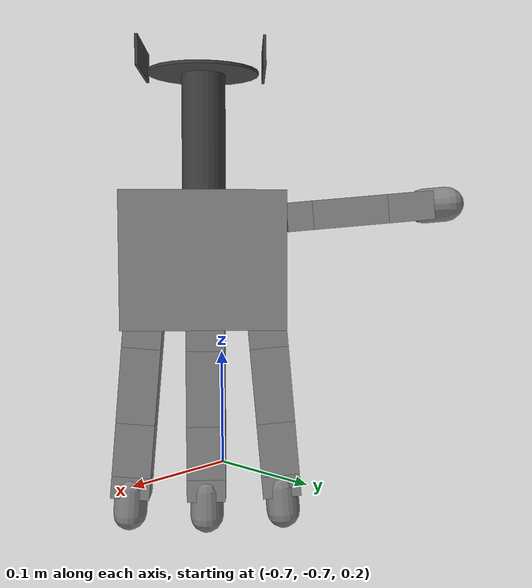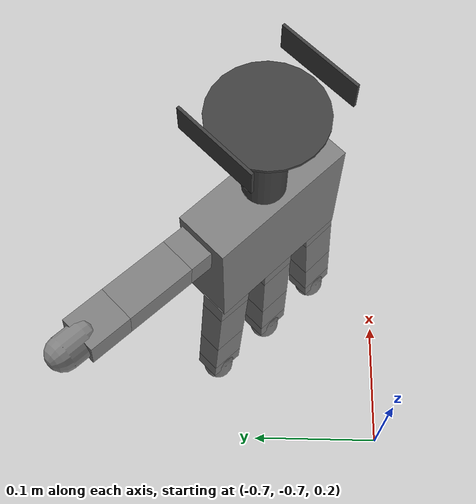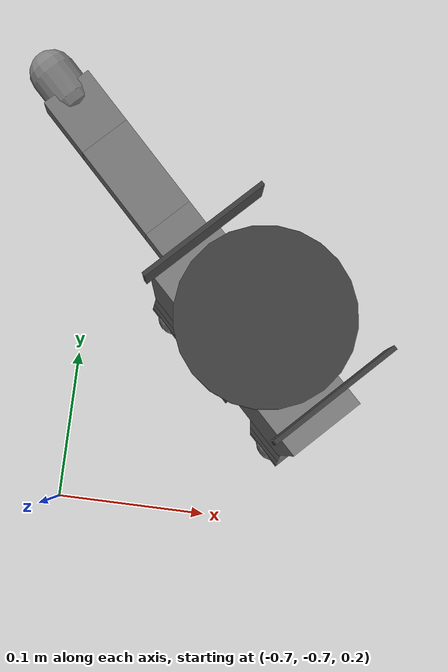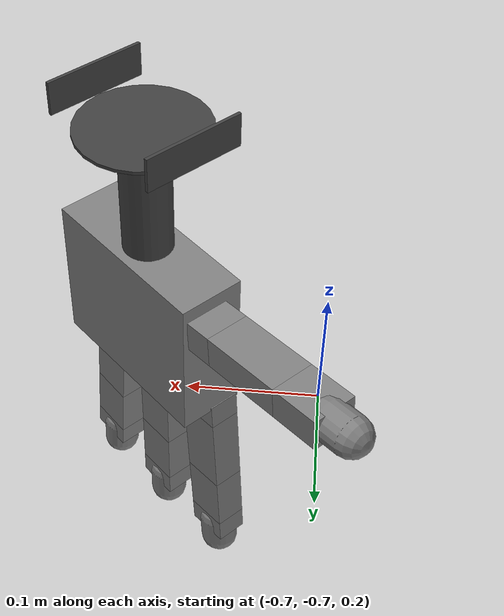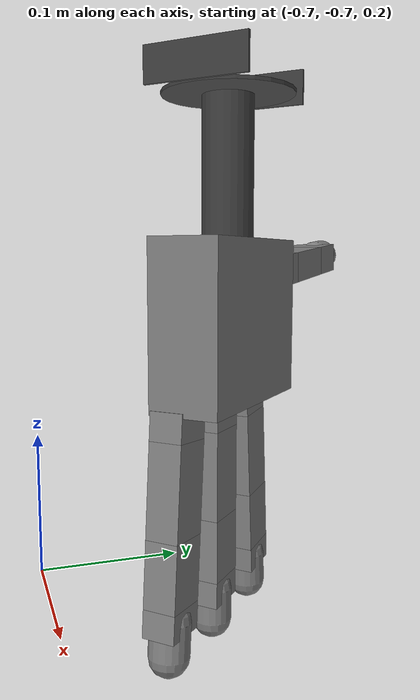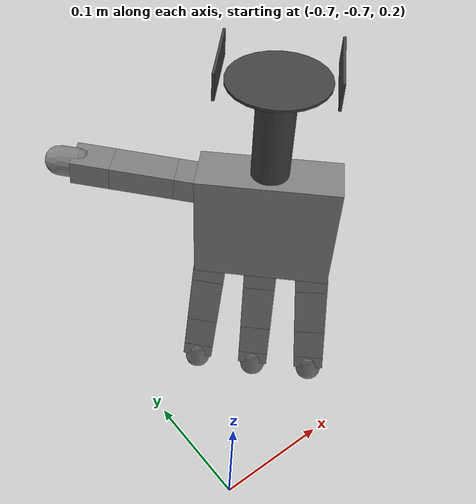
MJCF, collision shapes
<?xml version='1.0' encoding='utf-8'?>
<mujoco model="allegro_right">
  <include file="adapter_assets.xml"/>

  <option cone="elliptic" impratio="10"/>

  <default>
    <default class="allegro_right">
      <joint axis="0 1 0" damping=".1"/>
      <position kp="1"/>
      <geom density="800"/>

      <default class="visual">
        <geom type="mesh" contype="0" conaffinity="0" group="2" material="black"/>
        <default class="palm_visual">
          <geom mesh="base_link"/>
        </default>
        <default class="base_visual">
          <geom mesh="link_0.0"/>
        </default>
        <default class="proximal_visual">
          <geom mesh="link_1.0"/>
        </default>
        <default class="medial_visual">
          <geom mesh="link_2.0"/>
        </default>
        <default class="distal_visual">
          <geom mesh="link_3.0"/>
        </default>
        <default class="fingertip_visual">
          <geom pos="0 0 0.0267" material="white" mesh="link_3.0_tip"/>
        </default>
        <default class="thumbtip_visual">
          <geom pos="0 0 0.0423" material="white" mesh="link_15.0_tip"/>
        </default>
      </default>

      <default class="collision">
        <geom group="3" type="box" mass="0"/>
        <default class="palm_collision">
          <geom size="0.0204 0.0565 0.0475" pos="-0.0093 0 -0.0475"/>
        </default>
        <default class="base_collision">
          <geom size="0.0098 0.01375 0.0082" pos="0 0 0.0082"/>
          <default class="thumb_base_collision">
            <geom size="0.0179 0.017 0.02275" pos="-0.0179 0.009 0.0145"/>
          </default>
        </default>
        <default class="proximal_collision">
          <geom size="0.0098 0.01375 0.027" pos="0 0 0.027"/>
          <default class="thumb_proximal_collision">
            <geom size="0.0098 0.01375 0.00885" pos="0 0 0.00885"/>
          </default>
        </default>
        <default class="medial_collision">
          <geom size="0.0098 0.01375 0.0192" pos="0 0 0.0192"/>
          <default class="thumb_medial_collision">
            <geom size="0.0098 0.01375 0.0257" pos="0 0 0.0257"/>
          </default>
        </default>
        <default class="distal_collision">
          <geom size="0.0098 0.01375 0.008" pos="0 0 0.008"/>
          <default class="thumb_distal_collision">
            <geom size="0.0098 0.01375 0.0157" pos="0 0 0.0157"/>
          </default>
        </default>
        <default class="fingertip_collision">
          <geom type="capsule" size="0.012 0.01" pos="0 0 0.019"/>
          <default class="thumbtip_collision">
            <geom type="capsule" size="0.012 0.008" pos="0 0 0.035"/>
          </default>
        </default>
      </default>

      <default class="base">
        <joint axis="0 0 1" range="-0.47 0.47"/>
        <position ctrlrange="-0.47 0.47"/>
      </default>
      <default class="proximal">
        <joint range="-0.196 1.61"/>
        <position ctrlrange="-0.196 1.61"/>
      </default>
      <default class="medial">
        <joint range="-0.174 1.709"/>
        <position ctrlrange="-0.174 1.709"/>
      </default>
      <default class="distal">
        <joint range="-0.227 1.618"/>
        <position ctrlrange="-0.227 1.618"/>
      </default>
      <default class="thumb_base">
        <joint axis="-1 0 0" range="0.263 1.396"/>
        <position ctrlrange="0.263 1.396"/>
      </default>
      <default class="thumb_proximal">
        <joint axis="0 0 1" range="-0.105 1.163"/>
        <position ctrlrange="-0.105 1.163"/>
      </default>
      <default class="thumb_medial">
        <joint range="-0.189 1.644"/>
        <position ctrlrange="-0.189 1.644"/>
      </default>
      <default class="thumb_distal">
        <joint range="-0.162 1.719"/>
        <position ctrlrange="-0.162 1.719"/>
      </default>
    </default>
  </default>

  <asset>
    <material name="franka_white"     rgba="1 1 1 1"/>
    <material name="franka_off_white" rgba="0.901961 0.921569 0.929412 1"/>
    <material name="franka_black"     rgba="0.25 0.25 0.25 1"/>
    <mesh name="franka_hand_c"  file="/home/mourya/one_hand_ws/src/mujoco_menagerie/franka_emika_panda/assets/hand.stl"/>
    <mesh name="franka_hand_0"  file="/home/mourya/one_hand_ws/src/mujoco_menagerie/franka_emika_panda/assets/hand_0.obj"/>
    <mesh name="franka_hand_1"  file="/home/mourya/one_hand_ws/src/mujoco_menagerie/franka_emika_panda/assets/hand_1.obj"/>
    <mesh name="franka_hand_2"  file="/home/mourya/one_hand_ws/src/mujoco_menagerie/franka_emika_panda/assets/hand_2.obj"/>
    <mesh name="franka_hand_3"  file="/home/mourya/one_hand_ws/src/mujoco_menagerie/franka_emika_panda/assets/hand_3.obj"/>
    <mesh name="franka_hand_4"  file="/home/mourya/one_hand_ws/src/mujoco_menagerie/franka_emika_panda/assets/hand_4.obj"/>
    <material name="black" rgba="0.2 0.2 0.2 1"/>
    <material name="white" rgba="0.9 0.9 0.9 1"/>

    <mesh file="/home/mourya/one_hand_ws/src/mujoco_menagerie/wonik_allegro/assets/base_link.stl"/>
    <mesh file="/home/mourya/one_hand_ws/src/mujoco_menagerie/wonik_allegro/assets/link_0.0.stl"/>
    <mesh file="/home/mourya/one_hand_ws/src/mujoco_menagerie/wonik_allegro/assets/link_1.0.stl"/>
    <mesh file="/home/mourya/one_hand_ws/src/mujoco_menagerie/wonik_allegro/assets/link_2.0.stl"/>
    <mesh file="/home/mourya/one_hand_ws/src/mujoco_menagerie/wonik_allegro/assets/link_3.0.stl"/>
    <mesh file="/home/mourya/one_hand_ws/src/mujoco_menagerie/wonik_allegro/assets/link_3.0_tip.stl"/>
    <mesh file="/home/mourya/one_hand_ws/src/mujoco_menagerie/wonik_allegro/assets/link_12.0_right.stl"/>
    <mesh file="/home/mourya/one_hand_ws/src/mujoco_menagerie/wonik_allegro/assets/link_13.0.stl"/>
    <mesh file="/home/mourya/one_hand_ws/src/mujoco_menagerie/wonik_allegro/assets/link_14.0.stl"/>
    <mesh file="/home/mourya/one_hand_ws/src/mujoco_menagerie/wonik_allegro/assets/link_15.0.stl"/>
    <mesh file="/home/mourya/one_hand_ws/src/mujoco_menagerie/wonik_allegro/assets/link_15.0_tip.stl"/>
    </asset>

  <worldbody>
    <body name="tool_physical_allegro_hand" pos="-0.59 -0.6 0.533" quat="0.9238795 0 0 0.3826834" childclass="allegro_right">
      <freejoint/>
      <inertial mass="2.5" pos="0 0 -0.12" diaginertia="0.02 0.02 0.01"/>

      <!-- 1. Custom Male Adapter (Flipped 180deg so flat base is at Z=-0.019, pegs pointing UP at Z=0 towards bare robot wrist) -->
      <body name="custom_adapter" pos="0 0 0" quat="0 1 0 0">
        <geom type="mesh" mesh="franka_adapter_male" material="franka_black" contype="0" conaffinity="0" group="2"/>
        <geom type="cylinder" size="0.038 0.001" pos="0 0 0.019" material="franka_black" contype="0" conaffinity="0" group="2"/>
        <geom type="box" size="0.03 0.001 0.01" pos="0 -0.0415 0.01" material="franka_black" contype="0" conaffinity="0" group="2"/>
        <geom type="box" size="0.03 0.001 0.01" pos="0 0.0415 0.01" material="franka_black" contype="0" conaffinity="0" group="2"/>
      </body>

      <!-- 2. Cylindrical Extender Rod (Radius 15mm, Height 80mm). Center = -0.019 - 0.04 = -0.059 -->
      <!-- This rod acts as a standoff so the Allegro thumb base does not collide with the wide adapter -->
      <geom type="cylinder" size="0.015 0.04" pos="0 0 -0.059" material="franka_black" contype="1" conaffinity="1"/>

      <!-- 3. Allegro Hand Body -->
      <!-- The native base_link has its wrist at local Z=-0.095 and fingers at Z=0. -->
      <!-- We flip the hand 180 degrees around X (quat="0 0 1 0") so it hangs down and keeps its correct left/right orientation. -->
      <!-- Translating the cylinder to the center of the visual X-axis block. -->
      <body name="allegro_hand_tool_connector" pos="-0.0093 0 -0.194">
        <!-- Flipped 180 degrees around X so the wrist faces UP and fingers face DOWN -->
        <body name="palm" quat="0 0 1 0" childclass="allegro_right">
                  <geom class="palm_visual" mesh="base_link"/>
                  <geom class="palm_collision"/>
                  <!-- First finger -->
                  <body name="ff_base" pos="0 0.0435 -0.001542" quat="0.999048 -0.0436194 0 0">
                    <joint name="ffj0" class="base"/>
                    <geom class="base_visual"/>
                    <geom class="base_collision"/>
                    <body name="ff_proximal" pos="0 0 0.0164">
                      <joint name="ffj1" class="proximal"/>
                      <geom class="proximal_visual"/>
                      <geom class="proximal_collision"/>
                      <body name="ff_medial" pos="0 0 0.054">
                        <joint name="ffj2" class="medial"/>
                        <geom class="medial_visual"/>
                        <geom class="medial_collision"/>
                        <body name="ff_distal" pos="0 0 0.0384">
                          <joint name="ffj3" class="distal"/>
                          <geom class="distal_visual"/>
                          <geom class="distal_collision"/>
                          <body name="ff_tip">
                            <geom class="fingertip_visual"/>
                            <geom class="fingertip_collision"/>
                          </body>
                        </body>
                      </body>
                    </body>
                  </body>
                  <!-- Middle finger -->
                  <body name="mf_base" pos="0 0 0.0007">
                    <joint name="mfj0" class="base"/>
                    <geom class="base_visual"/>
                    <geom class="base_collision"/>
                    <body name="mf_proximal" pos="0 0 0.0164">
                      <joint name="mfj1" class="proximal"/>
                      <geom class="proximal_visual"/>
                      <geom class="proximal_collision"/>
                      <body name="mf_medial" pos="0 0 0.054">
                        <joint name="mfj2" class="medial"/>
                        <geom class="medial_visual"/>
                        <geom class="medial_collision"/>
                        <body name="mf_distal" pos="0 0 0.0384">
                          <joint name="mfj3" class="distal"/>
                          <geom class="distal_visual"/>
                          <geom class="distal_collision"/>
                          <body name="mf_tip">
                            <geom class="fingertip_visual"/>
                            <geom class="fingertip_collision"/>
                          </body>
                        </body>
                      </body>
                    </body>
                  </body>
                  <!-- Ring finger -->
                  <body name="rf_base" pos="0 -0.0435 -0.001542" quat="0.999048 0.0436194 0 0">
                    <joint name="rfj0" class="base"/>
                    <geom class="base_visual"/>
                    <geom class="base_collision"/>
                    <body name="rf_proximal" pos="0 0 0.0164">
                      <joint name="rfj1" class="proximal"/>
                      <geom class="proximal_visual"/>
                      <geom class="proximal_collision"/>
                      <body name="rf_medial" pos="0 0 0.054">
                        <joint name="rfj2" class="medial"/>
                        <geom class="medial_visual"/>
                        <geom class="medial_collision"/>
                        <body name="rf_distal" pos="0 0 0.0384">
                          <joint name="rfj3" class="distal"/>
                          <geom class="distal_visual"/>
                          <geom class="distal_collision"/>
                          <body name="rf_tip">
                            <geom class="fingertip_visual"/>
                            <geom class="fingertip_collision"/>
                          </body>
                        </body>
                      </body>
                    </body>
                  </body>
                  <!-- Thumb -->
                  <body name="th_base" pos="-0.0182 0.019333 -0.045987" quat="0.477714 -0.521334 -0.521334 -0.477714">
                    <joint name="thj0" class="thumb_base"/>
                    <geom class="visual" mesh="link_12.0_right"/>
                    <geom class="thumb_base_collision"/>
                    <body name="th_proximal" pos="-0.027 0.005 0.0399">
                      <joint name="thj1" class="thumb_proximal"/>
                      <geom class="visual" mesh="link_13.0"/>
                      <geom class="thumb_proximal_collision"/>
                      <body name="th_medial" pos="0 0 0.0177">
                        <joint name="thj2" class="thumb_medial"/>
                        <geom class="visual" mesh="link_14.0"/>
                        <geom class="thumb_medial_collision"/>
                        <body name="th_distal" pos="0 0 0.0514">
                          <joint name="thj3" class="thumb_distal"/>
                          <geom class="visual" mesh="link_15.0"/>
                          <geom class="thumb_distal_collision"/>
                          <body name="th_tip">
                            <geom class="thumbtip_visual"/>
                            <geom class="thumbtip_collision"/>
                          </body>
                        </body>
                      </body>
                    </body>
                  </body>
                </body>
        </body>
      </body>
  </worldbody>

  <contact>
    <exclude body1="palm" body2="ff_base"/>
    <exclude body1="palm" body2="mf_base"/>
    <exclude body1="palm" body2="rf_base"/>
    <exclude body1="palm" body2="th_base"/>
    <exclude body1="palm" body2="th_proximal"/>
  </contact>
  <actuator>
    <position name="ffa0" joint="ffj0" class="base"/>
    <position name="ffa1" joint="ffj1" class="proximal"/>
    <position name="ffa2" joint="ffj2" class="medial"/>
    <position name="ffa3" joint="ffj3" class="distal"/>
    <position name="mfa0" joint="mfj0" class="base"/>
    <position name="mfa1" joint="mfj1" class="proximal"/>
    <position name="mfa2" joint="mfj2" class="medial"/>
    <position name="mfa3" joint="mfj3" class="distal"/>
    <position name="rfa0" joint="rfj0" class="base"/>
    <position name="rfa1" joint="rfj1" class="proximal"/>
    <position name="rfa2" joint="rfj2" class="medial"/>
    <position name="rfa3" joint="rfj3" class="distal"/>
    <position name="tha0" joint="thj0" class="thumb_base"/>
    <position name="tha1" joint="thj1" class="thumb_proximal"/>
    <position name="tha2" joint="thj2" class="thumb_medial"/>
    <position name="tha3" joint="thj3" class="thumb_distal"/>
  </actuator>
</mujoco>

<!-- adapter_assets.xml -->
<mujoco>
  <asset>
    <!-- Custom Composite Male Adapter Mesh -->
    <mesh name="franka_adapter_male" file="/home/mourya/one_hand_ws/src/one_hand_interface/urdf/external_tools/franka_adapter_male_final.obj"/>
  </asset>
</mujoco>
